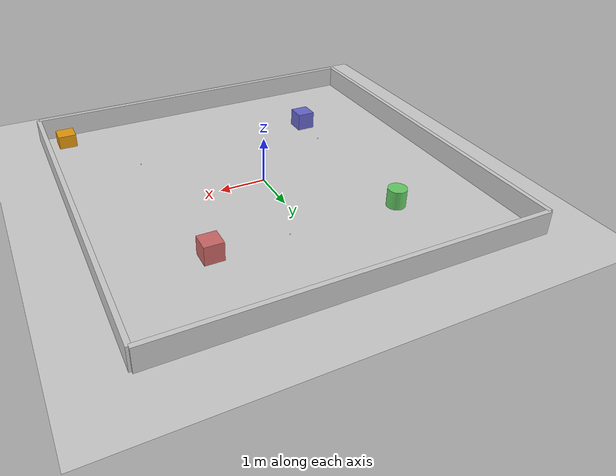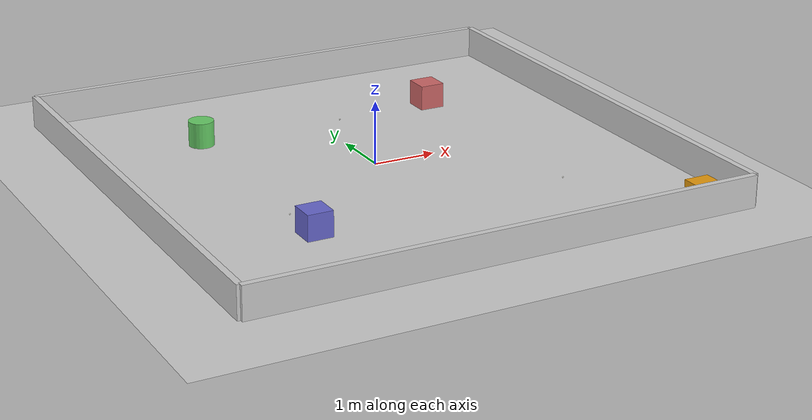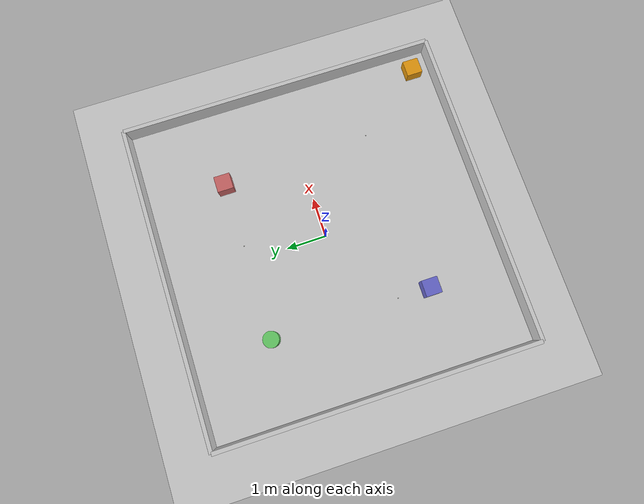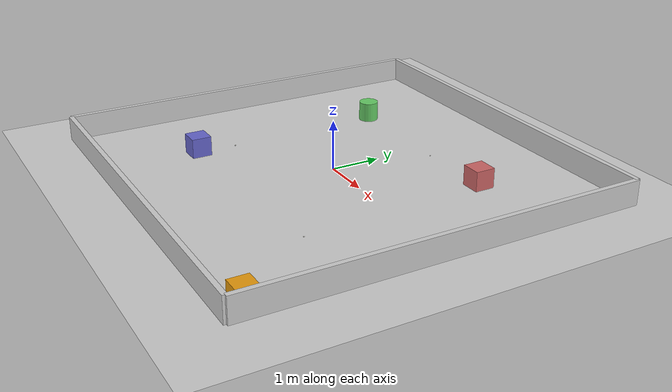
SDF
<?xml version="1.0" ?>
<sdf version="1.8">
  <world name="office_room">
    <physics name="1ms" type="ignored">
      <max_step_size>0.001</max_step_size>
      <real_time_factor>1.0</real_time_factor>
      <real_time_update_rate>1000</real_time_update_rate>
    </physics>

    <!-- Required Gazebo Plugins -->
    <plugin
      filename="gz-sim-physics-system"
      name="gz::sim::systems::Physics">
    </plugin>
    <plugin
      filename="gz-sim-user-commands-system"
      name="gz::sim::systems::UserCommands">
    </plugin>
    <plugin
      filename="gz-sim-scene-broadcaster-system"
      name="gz::sim::systems::SceneBroadcaster">
    </plugin>
    <!-- Sensors and Imu plugins are loaded by the robot URDF; commenting out here to prevent duplicate loading crash -->

    <!-- Sun Light -->
    <light type="directional" name="sun">
      <cast_shadows>true</cast_shadows>
      <pose>0 0 10 0 0 0</pose>
      <diffuse>0.8 0.8 0.8 1</diffuse>
      <specular>0.2 0.2 0.2 1</specular>
      <attenuation>
        <range>1000</range>
        <constant>0.9</constant>
        <linear>0.01</linear>
        <quadratic>0.001</quadratic>
      </attenuation>
      <direction>-0.5 0.1 -0.9</direction>
    </light>

    <!-- Ground Plane -->
    <model name="ground_plane">
      <static>true</static>
      <link name="link">
        <collision name="collision">
          <geometry>
            <plane>
              <normal>0 0 1</normal>
              <size>100 100</size>
            </plane>
          </geometry>
        </collision>
        <visual name="visual">
          <geometry>
            <plane>
              <normal>0 0 1</normal>
              <size>100 100</size>
            </plane>
          </geometry>
          <material>
            <ambient>0.8 0.8 0.8 1</ambient>
            <diffuse>0.8 0.8 0.8 1</diffuse>
            <specular>0.8 0.8 0.8 1</specular>
          </material>
        </visual>
      </link>
    </model>

    <!-- Walls: 8m x 8m room boundary, thickness=0.1m, height=0.5m -->
    <!-- Front Wall -->
    <model name="wall_front">
      <static>true</static>
      <pose>4.0 0.0 0.25 0 0 0</pose>
      <link name="link">
        <collision name="collision">
          <geometry>
            <box>
              <size>0.1 8.0 0.5</size>
            </box>
          </geometry>
        </collision>
        <visual name="visual">
          <geometry>
            <box>
              <size>0.1 8.0 0.5</size>
            </box>
          </geometry>
          <material>
            <ambient>0.6 0.6 0.6 1</ambient>
            <diffuse>0.8 0.8 0.8 1</diffuse>
          </material>
        </visual>
      </link>
    </model>

    <!-- Back Wall -->
    <model name="wall_back">
      <static>true</static>
      <pose>-4.0 0.0 0.25 0 0 0</pose>
      <link name="link">
        <collision name="collision">
          <geometry>
            <box>
              <size>0.1 8.0 0.5</size>
            </box>
          </geometry>
        </collision>
        <visual name="visual">
          <geometry>
            <box>
              <size>0.1 8.0 0.5</size>
            </box>
          </geometry>
          <material>
            <ambient>0.6 0.6 0.6 1</ambient>
            <diffuse>0.8 0.8 0.8 1</diffuse>
          </material>
        </visual>
      </link>
    </model>

    <!-- Left Wall -->
    <model name="wall_left">
      <static>true</static>
      <pose>0.0 4.0 0.25 0 0 0</pose>
      <link name="link">
        <collision name="collision">
          <geometry>
            <box>
              <size>8.0 0.1 0.5</size>
            </box>
          </geometry>
        </collision>
        <visual name="visual">
          <geometry>
            <box>
              <size>8.0 0.1 0.5</size>
            </box>
          </geometry>
          <material>
            <ambient>0.6 0.6 0.6 1</ambient>
            <diffuse>0.8 0.8 0.8 1</diffuse>
          </material>
        </visual>
      </link>
    </model>

    <!-- Right Wall -->
    <model name="wall_right">
      <static>true</static>
      <pose>0.0 -4.0 0.25 0 0 0</pose>
      <link name="link">
        <collision name="collision">
          <geometry>
            <box>
              <size>8.0 0.1 0.5</size>
            </box>
          </geometry>
        </collision>
        <visual name="visual">
          <geometry>
            <box>
              <size>8.0 0.1 0.5</size>
            </box>
          </geometry>
          <material>
            <ambient>0.6 0.6 0.6 1</ambient>
            <diffuse>0.8 0.8 0.8 1</diffuse>
          </material>
        </visual>
      </link>
    </model>

    <!-- Obstacles inside the room (not overlapping with spawn point (0,0)) -->
    <!-- Box 1 (size 0.4 x 0.4 x 0.4, placed near front-left) -->
    <model name="obstacle_box1">
      <static>true</static>
      <pose>2.0 2.0 0.2 0 0 0</pose>
      <link name="link">
        <collision name="collision">
          <geometry>
            <box>
              <size>0.4 0.4 0.4</size>
            </box>
          </geometry>
        </collision>
        <visual name="visual">
          <geometry>
            <box>
              <size>0.4 0.4 0.4</size>
            </box>
          </geometry>
          <material>
            <ambient>0.8 0.4 0.4 1</ambient>
            <diffuse>0.8 0.4 0.4 1</diffuse>
          </material>
        </visual>
      </link>
    </model>

    <!-- Box 2 (size 0.4 x 0.4 x 0.4, placed near back-right) -->
    <model name="obstacle_box2">
      <static>true</static>
      <pose>-2.0 -2.0 0.2 0 0 0</pose>
      <link name="link">
        <collision name="collision">
          <geometry>
            <box>
              <size>0.4 0.4 0.4</size>
            </box>
          </geometry>
        </collision>
        <visual name="visual">
          <geometry>
            <box>
              <size>0.4 0.4 0.4</size>
            </box>
          </geometry>
          <material>
            <ambient>0.4 0.4 0.8 1</ambient>
            <diffuse>0.4 0.4 0.8 1</diffuse>
          </material>
        </visual>
      </link>
    </model>

    <!-- Cylinder 1 (radius 0.2, height 0.4, placed near back-left) -->
    <model name="obstacle_cylinder1">
      <static>true</static>
      <pose>-2.0 2.0 0.2 0 0 0</pose>
      <link name="link">
        <collision name="collision">
          <geometry>
            <cylinder>
              <radius>0.2</radius>
              <length>0.4</length>
            </cylinder>
          </geometry>
        </collision>
        <visual name="visual">
          <geometry>
            <cylinder>
              <radius>0.2</radius>
              <length>0.4</length>
            </cylinder>
          </geometry>
          <material>
            <ambient>0.4 0.8 0.4 1</ambient>
            <diffuse>0.4 0.8 0.4 1</diffuse>
          </material>
        </visual>
      </link>
    </model>

    <model name="dustbox">
      <static>true</static>
      <pose>3.5 -3.5 0.15 0 0 0</pose>
      <link name="link">
        <visual name="visual">
          <geometry>
            <box>
              <size>0.4 0.4 0.3</size>
            </box>
          </geometry>
          <material>
            <ambient>0.9 0.6 0.05 1</ambient>
            <diffuse>0.9 0.6 0.05 1</diffuse>
            <specular>0.2 0.2 0.2 1</specular>
          </material>
        </visual>
      </link>
    </model>

    <!-- Paper Trash 1 near WP1 (2.4, -2.4) -->
    <model name="paper_trash_1">
      <static>true</static>
      <pose>2.2 -1.8 0.012 0 0 0</pose>
      <link name="link">
        <visual name="visual">
          <geometry>
            <sphere>
              <radius>0.012</radius>
            </sphere>
          </geometry>
          <material>
            <ambient>0.92 0.92 0.88 1</ambient>
            <diffuse>0.92 0.92 0.88 1</diffuse>
            <specular>0.1 0.1 0.1 1</specular>
          </material>
        </visual>
      </link>
    </model>

    <!-- Paper Trash 2 near WP2 (0.0, 2.4) -->
    <model name="paper_trash_2">
      <static>true</static>
      <pose>0.4 2.0 0.012 0 0 0</pose>
      <link name="link">
        <visual name="visual">
          <geometry>
            <sphere>
              <radius>0.012</radius>
            </sphere>
          </geometry>
          <material>
            <ambient>0.92 0.92 0.88 1</ambient>
            <diffuse>0.92 0.92 0.88 1</diffuse>
            <specular>0.1 0.1 0.1 1</specular>
          </material>
        </visual>
      </link>
    </model>

    <!-- Paper Trash 3 relocated off patrol path (was -1.8,0.5, run on WP2->WP3 centerline) -->
    <model name="paper_trash_3">
      <static>true</static>
      <pose>-2.0 -1.2 0.012 0 0 0</pose>
      <link name="link">
        <visual name="visual">
          <geometry>
            <sphere>
              <radius>0.012</radius>
            </sphere>
          </geometry>
          <material>
            <ambient>0.92 0.92 0.88 1</ambient>
            <diffuse>0.92 0.92 0.88 1</diffuse>
            <specular>0.1 0.1 0.1 1</specular>
          </material>
        </visual>
      </link>
    </model>

  </world>
</sdf>
